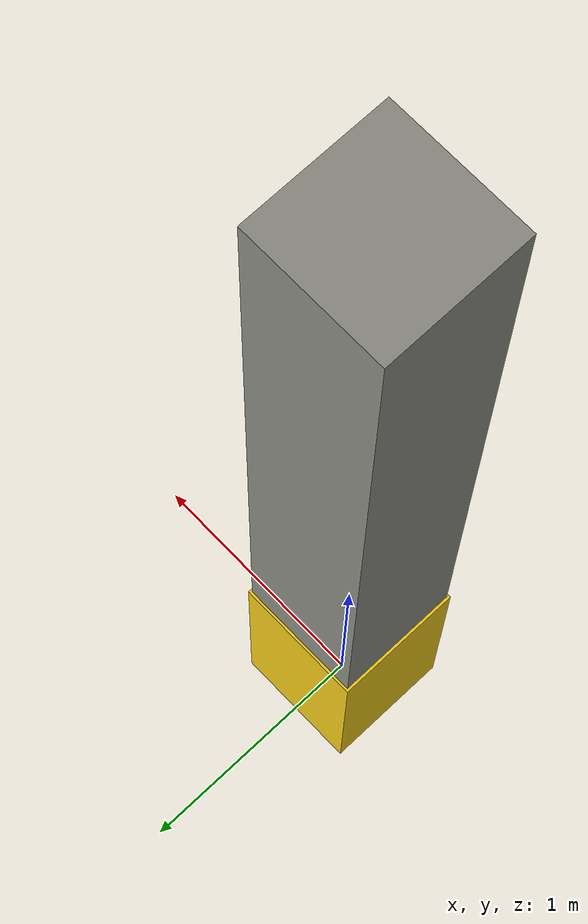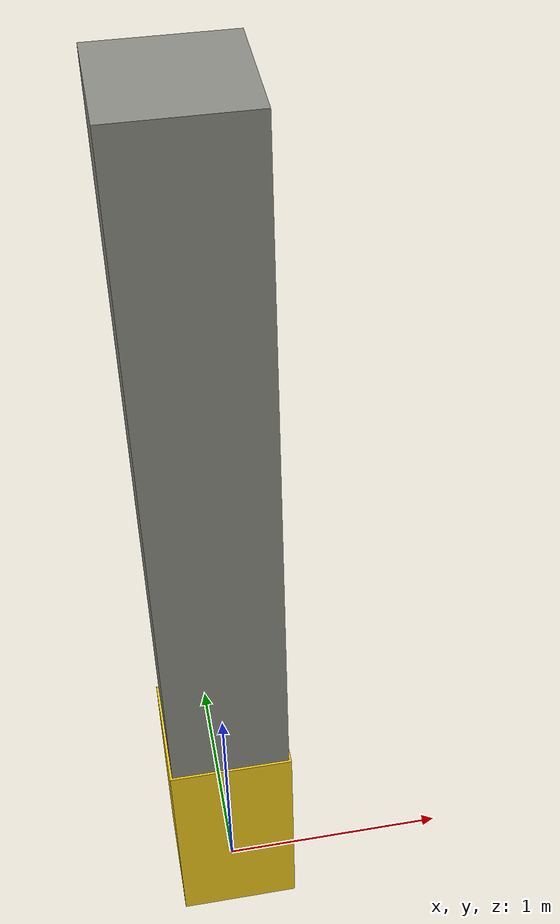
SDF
<?xml version="1.0" ?>
<!-- 구조 기둥. 모델 원점 = 바닥 중심. -->
<sdf version="1.8">
  <model name="pillar">
    <static>true</static>
    <link name="link">
      <collision name="collision">
        <pose>0 0 2.0 0 0 0</pose>
        <geometry><box><size>0.5 0.5 4.0</size></box></geometry>
      </collision>
      <visual name="visual">
        <pose>0 0 2.0 0 0 0</pose>
        <geometry><box><size>0.5 0.5 4.0</size></box></geometry>
        <material>
          <ambient>0.55 0.55 0.52 1</ambient>
          <diffuse>0.55 0.55 0.52 1</diffuse>
          <specular>0.05 0.05 0.05 1</specular>
        </material>
      </visual>
      <!-- 하단 안전 도색 띠 (노랑/검정 대신 단색 노랑) -->
      <visual name="safety_band">
        <pose>0 0 0.5 0 0 0</pose>
        <geometry><box><size>0.52 0.52 1.0</size></box></geometry>
        <material>
          <ambient>0.95 0.80 0.10 1</ambient>
          <diffuse>0.95 0.80 0.10 1</diffuse>
        </material>
      </visual>
    </link>
  </model>
</sdf>
